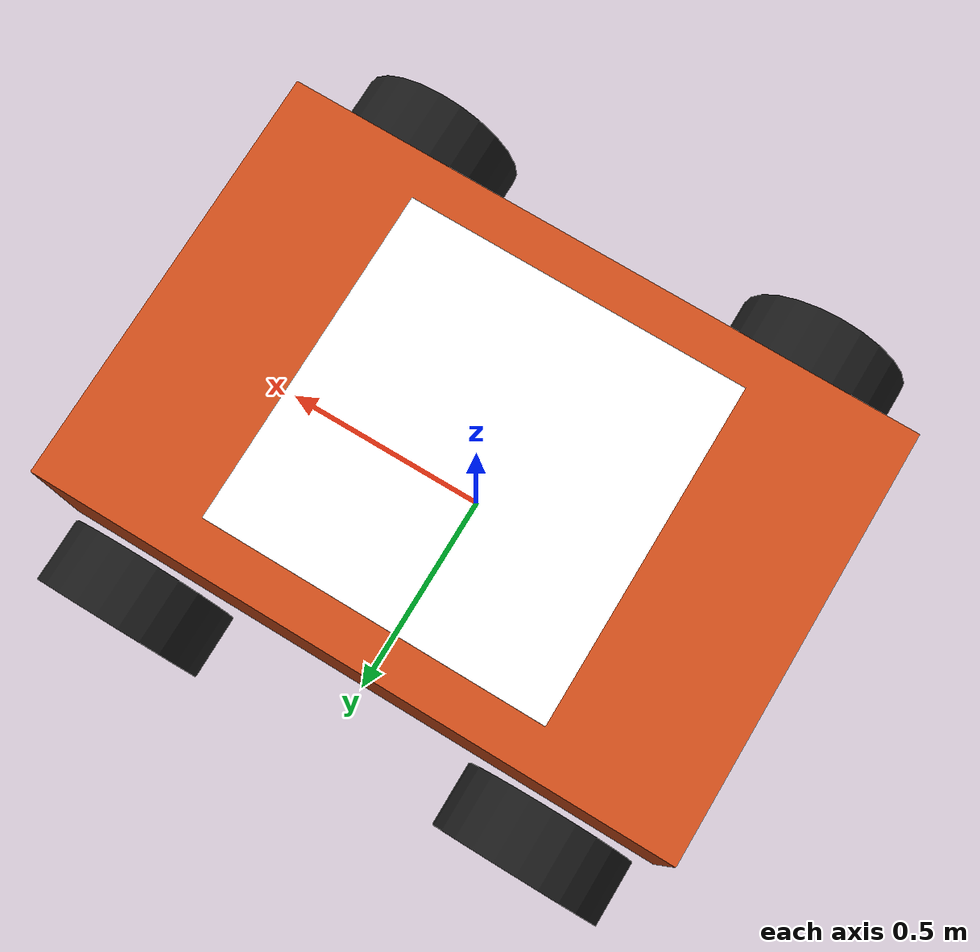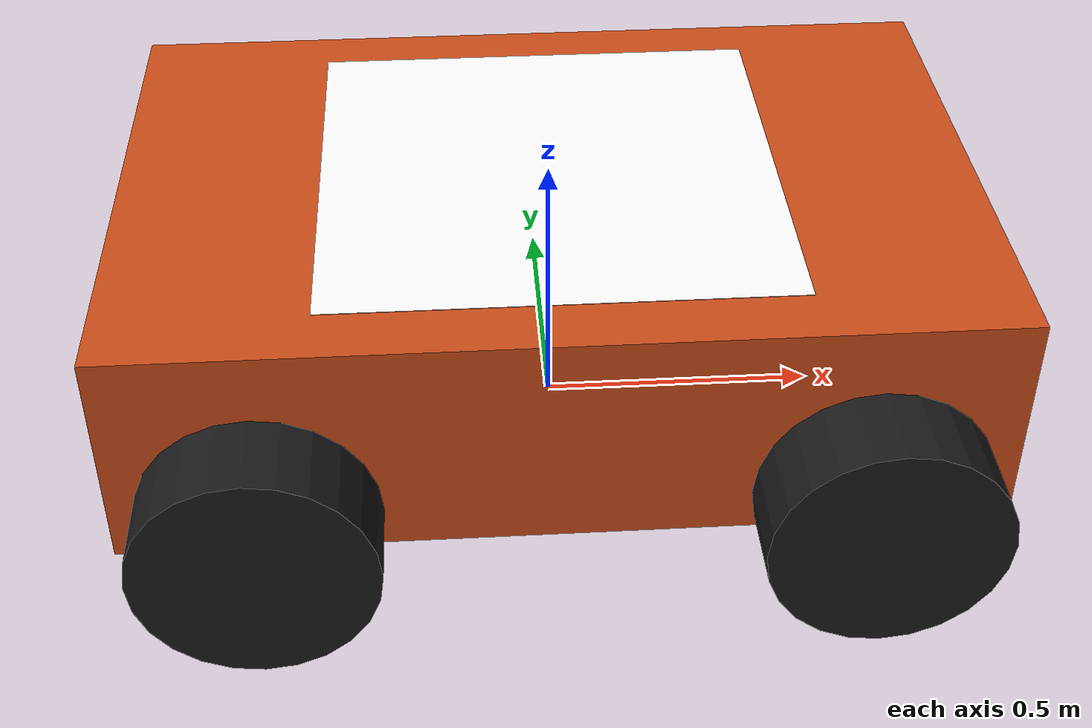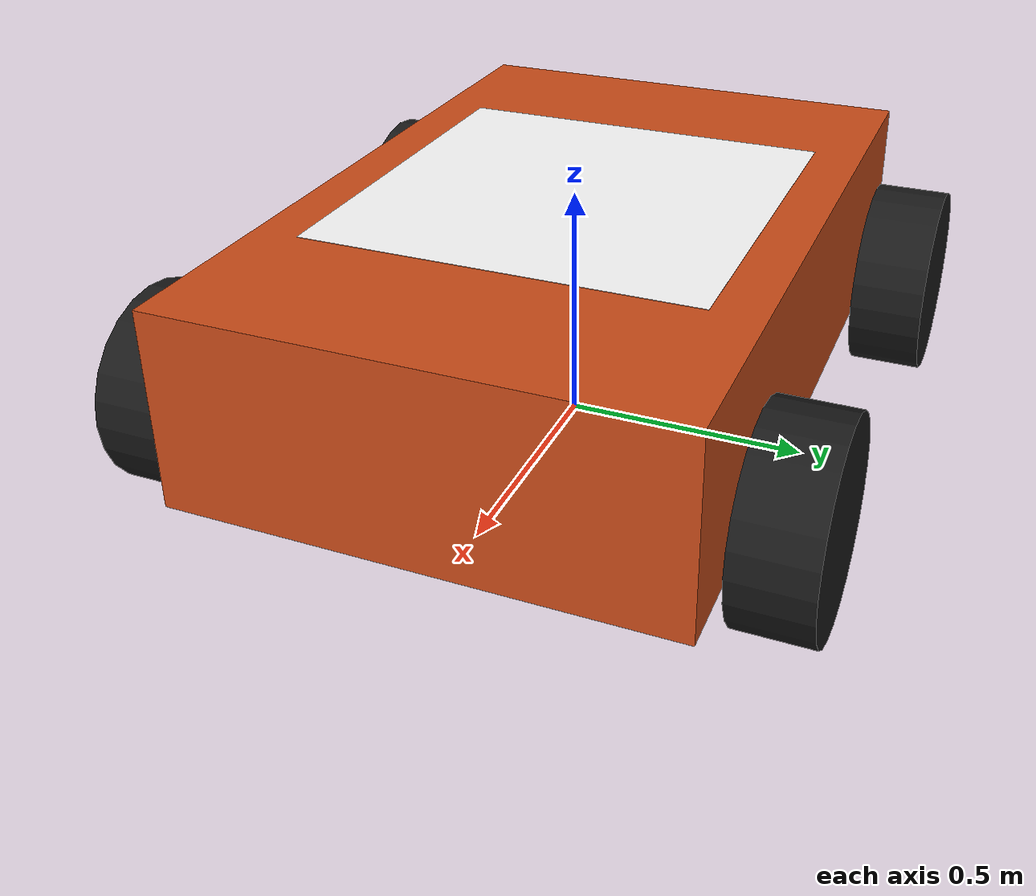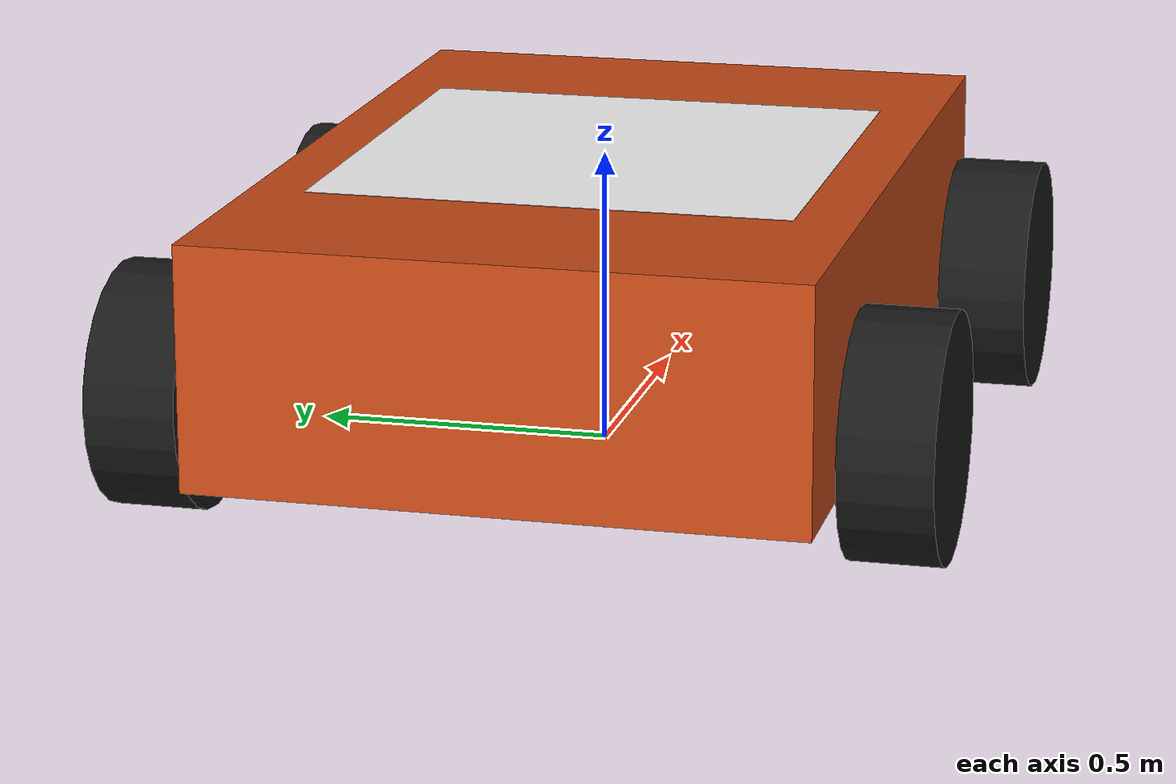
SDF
<?xml version="1.0" ?>
<sdf version="1.8">
  <model name="mars_rover_static">
    <static>true</static>
    <link name="link">
      <visual name="chassis_visual">
        <pose>0 0 0.3 0 0 0</pose>
        <geometry>
          <box>
            <size>1.5 1.0 0.4</size>
          </box>
        </geometry>
        <material>
          <ambient>0.8 0.3 0.1 1</ambient> <diffuse>0.8 0.3 0.1 1</diffuse>
          <specular>0.1 0.1 0.1 1</specular>
        </material>
      </visual>
      <collision name="chassis_collision">
        <pose>0 0 0.3 0 0 0</pose>
        <geometry>
          <box>
            <size>1.5 1.0 0.4</size>
          </box>
        </geometry>
      </collision>
      <visual name="aruco_marker">
        <pose>0 0 0.505 0 0 0</pose>
        <cast_shadows>false</cast_shadows>
        <geometry>
          <box>
            <size>0.8 0.8 0.001</size>
          </box>
        </geometry>
        <material>
          <ambient>1.0 1.0 1.0 1.0</ambient>
          <diffuse>1.0 1.0 1.0 1.0</diffuse>
          <specular>0.0 0.0 0.0 1.0</specular>
          <pbr>
            <metal>
              <albedo_map>materials/aruco_marker_0.png</albedo_map>
              <roughness>0.0</roughness>
              <metalness>0.0</metalness>
            </metal>
          </pbr>
        </material>
      </visual>

      <visual name="fl_wheel">
        <pose>0.5 0.6 0.2 1.5707 0 0</pose>
        <geometry><cylinder><radius>0.2</radius><length>0.15</length></cylinder></geometry>
        <material><ambient>0.1 0.1 0.1 1</ambient><diffuse>0.1 0.1 0.1 1</diffuse></material>
      </visual>
      <visual name="fr_wheel">
        <pose>0.5 -0.6 0.2 1.5707 0 0</pose>
        <geometry><cylinder><radius>0.2</radius><length>0.15</length></cylinder></geometry>
        <material><ambient>0.1 0.1 0.1 1</ambient><diffuse>0.1 0.1 0.1 1</diffuse></material>
      </visual>
      <visual name="rl_wheel">
        <pose>-0.5 0.6 0.2 1.5707 0 0</pose>
        <geometry><cylinder><radius>0.2</radius><length>0.15</length></cylinder></geometry>
        <material><ambient>0.1 0.1 0.1 1</ambient><diffuse>0.1 0.1 0.1 1</diffuse></material>
      </visual>
      <visual name="rr_wheel">
        <pose>-0.5 -0.6 0.2 1.5707 0 0</pose>
        <geometry><cylinder><radius>0.2</radius><length>0.15</length></cylinder></geometry>
        <material><ambient>0.1 0.1 0.1 1</ambient><diffuse>0.1 0.1 0.1 1</diffuse></material>
      </visual>
    </link>
  </model>
</sdf>
